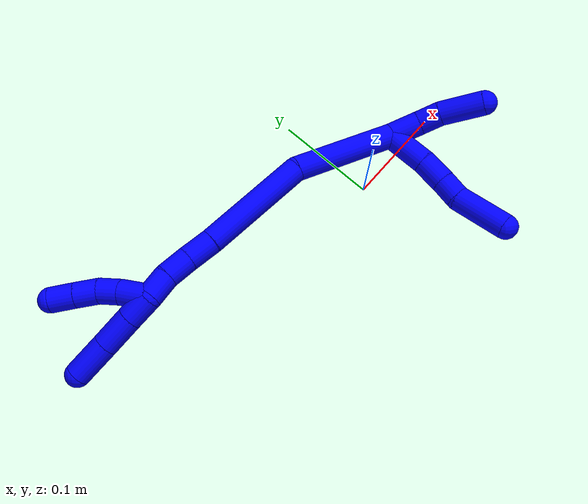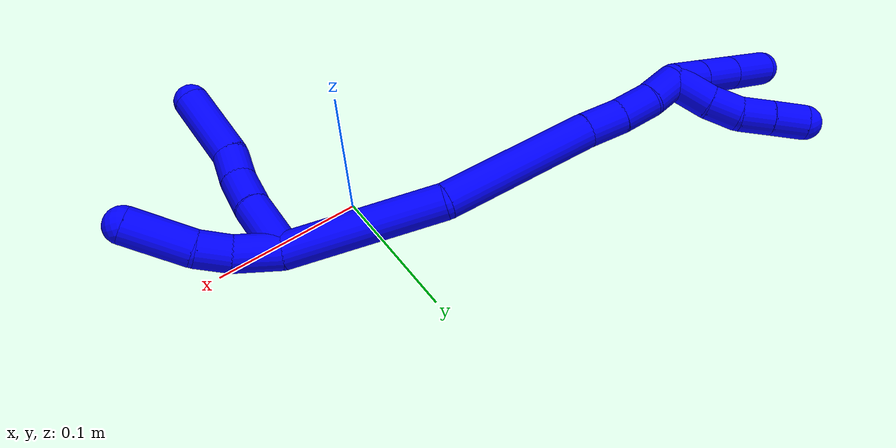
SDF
<sdf version="1.7">
 <world name="default">
  <model name="1">
   <static>0</static>
   <link name="1">
    <collision name="collision-cylinder-e_1_2_8">
     <pose>-0.011809 -0.014699 -0.010914 2.20951 -0.572869 -1.05946</pose>
     <geometry><cylinder><radius>0.0125</radius><length>0.043572</length></cylinder></geometry>
     <surface>
      <friction><ode><mu>1.16</mu><mu2>1.16</mu2><slip1>0</slip1><slip2>0</slip2></ode></friction>
      <contact><ode><kp>1e+06</kp><kd>1</kd><max_vel>0</max_vel><min_depth>0.001</min_depth></ode></contact>
     </surface>
    </collision>
    <visual name="visual-cylinder-e_1_2_8">
     <pose>-0.011809 -0.014699 -0.010914 2.20951 -0.572869 -1.05946</pose>
     <geometry><cylinder><radius>0.0125</radius><length>0.043572</length></cylinder></geometry>
     <material><ambient>0 0 1 1</ambient></material>
    </visual>
    <collision name="collision-cylinder-e_2_8_9">
     <pose>-0.032582 -0.038545 -0.027868 2.15431 -0.685498 -1.17115</pose>
     <geometry><cylinder><radius>0.0125</radius><length>0.02832</length></cylinder></geometry>
     <surface>
      <friction><ode><mu>1.16</mu><mu2>1.16</mu2><slip1>0</slip1><slip2>0</slip2></ode></friction>
      <contact><ode><kp>1e+06</kp><kd>1</kd><max_vel>0</max_vel><min_depth>0.001</min_depth></ode></contact>
     </surface>
    </collision>
    <visual name="visual-cylinder-e_2_8_9">
     <pose>-0.032582 -0.038545 -0.027868 2.15431 -0.685498 -1.17115</pose>
     <geometry><cylinder><radius>0.0125</radius><length>0.02832</length></cylinder></geometry>
     <material><ambient>0 0 1 1</ambient></material>
    </visual>
    <collision name="collision-cylinder-e_3_9_10">
     <pose>-0.048437 -0.056595 -0.036994 1.90456 -0.631457 -0.860624</pose>
     <geometry><cylinder><radius>0.0125</radius><length>0.023348</length></cylinder></geometry>
     <surface>
      <friction><ode><mu>1.16</mu><mu2>1.16</mu2><slip1>0</slip1><slip2>0</slip2></ode></friction>
      <contact><ode><kp>1e+06</kp><kd>1</kd><max_vel>0</max_vel><min_depth>0.001</min_depth></ode></contact>
     </surface>
    </collision>
    <visual name="visual-cylinder-e_3_9_10">
     <pose>-0.048437 -0.056595 -0.036994 1.90456 -0.631457 -0.860624</pose>
     <geometry><cylinder><radius>0.0125</radius><length>0.023348</length></cylinder></geometry>
     <material><ambient>0 0 1 1</ambient></material>
    </visual>
    <collision name="collision-cylinder-e_4_10_6">
     <pose>-0.065901 -0.087338 -0.052767 2.09702 -0.396439 -0.671484</pose>
     <geometry><cylinder><radius>0.0125</radius><length>0.054761</length></cylinder></geometry>
     <surface>
      <friction><ode><mu>1.16</mu><mu2>1.16</mu2><slip1>0</slip1><slip2>0</slip2></ode></friction>
      <contact><ode><kp>1e+06</kp><kd>1</kd><max_vel>0</max_vel><min_depth>0.001</min_depth></ode></contact>
     </surface>
    </collision>
    <visual name="visual-cylinder-e_4_10_6">
     <pose>-0.065901 -0.087338 -0.052767 2.09702 -0.396439 -0.671484</pose>
     <geometry><cylinder><radius>0.0125</radius><length>0.054761</length></cylinder></geometry>
     <material><ambient>0 0 1 1</ambient></material>
    </visual>
    <collision name="collision-cylinder-e_1_2_11">
     <pose>0.006133 -0.004589 -0.013964 2.82409 0.395288 1.79278</pose>
     <geometry><cylinder><radius>0.0125</radius><length>0.031855</length></cylinder></geometry>
     <surface>
      <friction><ode><mu>1.16</mu><mu2>1.16</mu2><slip1>0</slip1><slip2>0</slip2></ode></friction>
      <contact><ode><kp>1e+06</kp><kd>1</kd><max_vel>0</max_vel><min_depth>0.001</min_depth></ode></contact>
     </surface>
    </collision>
    <visual name="visual-cylinder-e_1_2_11">
     <pose>0.006133 -0.004589 -0.013964 2.82409 0.395288 1.79278</pose>
     <geometry><cylinder><radius>0.0125</radius><length>0.031855</length></cylinder></geometry>
     <material><ambient>0 0 1 1</ambient></material>
    </visual>
    <collision name="collision-cylinder-e_2_11_12">
     <pose>0.017305 -0.014822 -0.036734 2.57154 0.448974 1.32398</pose>
     <geometry><cylinder><radius>0.0125</radius><length>0.023218</length></cylinder></geometry>
     <surface>
      <friction><ode><mu>1.16</mu><mu2>1.16</mu2><slip1>0</slip1><slip2>0</slip2></ode></friction>
      <contact><ode><kp>1e+06</kp><kd>1</kd><max_vel>0</max_vel><min_depth>0.001</min_depth></ode></contact>
     </surface>
    </collision>
    <visual name="visual-cylinder-e_2_11_12">
     <pose>0.017305 -0.014822 -0.036734 2.57154 0.448974 1.32398</pose>
     <geometry><cylinder><radius>0.0125</radius><length>0.023218</length></cylinder></geometry>
     <material><ambient>0 0 1 1</ambient></material>
    </visual>
    <collision name="collision-cylinder-e_3_12_5">
     <pose>0.028456 -0.034468 -0.062007 2.43697 0.275578 0.721348</pose>
     <geometry><cylinder><radius>0.0125</radius><length>0.044927</length></cylinder></geometry>
     <surface>
      <friction><ode><mu>1.16</mu><mu2>1.16</mu2><slip1>0</slip1><slip2>0</slip2></ode></friction>
      <contact><ode><kp>1e+06</kp><kd>1</kd><max_vel>0</max_vel><min_depth>0.001</min_depth></ode></contact>
     </surface>
    </collision>
    <visual name="visual-cylinder-e_3_12_5">
     <pose>0.028456 -0.034468 -0.062007 2.43697 0.275578 0.721348</pose>
     <geometry><cylinder><radius>0.0125</radius><length>0.044927</length></cylinder></geometry>
     <material><ambient>0 0 1 1</ambient></material>
    </visual>
    <collision name="collision-cylinder-e_1_2_13">
     <pose>-0.012268 0.000276 0.053133 -0.00519 -0.226919 0.000591</pose>
     <geometry><cylinder><radius>0.0125</radius><length>0.109064</length></cylinder></geometry>
     <surface>
      <friction><ode><mu>1.16</mu><mu2>1.16</mu2><slip1>0</slip1><slip2>0</slip2></ode></friction>
      <contact><ode><kp>1e+06</kp><kd>1</kd><max_vel>0</max_vel><min_depth>0.001</min_depth></ode></contact>
     </surface>
    </collision>
    <visual name="visual-cylinder-e_1_2_13">
     <pose>-0.012268 0.000276 0.053133 -0.00519 -0.226919 0.000591</pose>
     <geometry><cylinder><radius>0.0125</radius><length>0.109064</length></cylinder></geometry>
     <material><ambient>0 0 1 1</ambient></material>
    </visual>
    <collision name="collision-cylinder-e_2_13_14">
     <pose>-0.053819 -0.005195 0.153213 0.121792 -0.554359 -0.03469</pose>
     <geometry><cylinder><radius>0.0125</radius><length>0.111255</length></cylinder></geometry>
     <surface>
      <friction><ode><mu>1.16</mu><mu2>1.16</mu2><slip1>0</slip1><slip2>0</slip2></ode></friction>
      <contact><ode><kp>1e+06</kp><kd>1</kd><max_vel>0</max_vel><min_depth>0.001</min_depth></ode></contact>
     </surface>
    </collision>
    <visual name="visual-cylinder-e_2_13_14">
     <pose>-0.053819 -0.005195 0.153213 0.121792 -0.554359 -0.03469</pose>
     <geometry><cylinder><radius>0.0125</radius><length>0.111255</length></cylinder></geometry>
     <material><ambient>0 0 1 1</ambient></material>
    </visual>
    <collision name="collision-cylinder-e_3_14_15">
     <pose>-0.089964 -0.011562 0.212323 0.050997 -0.513098 -0.013381</pose>
     <geometry><cylinder><radius>0.0125</radius><length>0.02796</length></cylinder></geometry>
     <surface>
      <friction><ode><mu>1.16</mu><mu2>1.16</mu2><slip1>0</slip1><slip2>0</slip2></ode></friction>
      <contact><ode><kp>1e+06</kp><kd>1</kd><max_vel>0</max_vel><min_depth>0.001</min_depth></ode></contact>
     </surface>
    </collision>
    <visual name="visual-cylinder-e_3_14_15">
     <pose>-0.089964 -0.011562 0.212323 0.050997 -0.513098 -0.013381</pose>
     <geometry><cylinder><radius>0.0125</radius><length>0.02796</length></cylinder></geometry>
     <material><ambient>0 0 1 1</ambient></material>
    </visual>
    <collision name="collision-cylinder-e_4_15_16">
     <pose>-0.103197 -0.014058 0.235852 0.163593 -0.505199 -0.042314</pose>
     <geometry><cylinder><radius>0.0125</radius><length>0.026327</length></cylinder></geometry>
     <surface>
      <friction><ode><mu>1.16</mu><mu2>1.16</mu2><slip1>0</slip1><slip2>0</slip2></ode></friction>
      <contact><ode><kp>1e+06</kp><kd>1</kd><max_vel>0</max_vel><min_depth>0.001</min_depth></ode></contact>
     </surface>
    </collision>
    <visual name="visual-cylinder-e_4_15_16">
     <pose>-0.103197 -0.014058 0.235852 0.163593 -0.505199 -0.042314</pose>
     <geometry><cylinder><radius>0.0125</radius><length>0.026327</length></cylinder></geometry>
     <material><ambient>0 0 1 1</ambient></material>
    </visual>
    <collision name="collision-cylinder-e_5_16_1">
     <pose>-0.117287 -0.01916 0.256769 0.325667 -0.653432 -0.111226</pose>
     <geometry><cylinder><radius>0.0125</radius><length>0.025394</length></cylinder></geometry>
     <surface>
      <friction><ode><mu>1.16</mu><mu2>1.16</mu2><slip1>0</slip1><slip2>0</slip2></ode></friction>
      <contact><ode><kp>1e+06</kp><kd>1</kd><max_vel>0</max_vel><min_depth>0.001</min_depth></ode></contact>
     </surface>
    </collision>
    <visual name="visual-cylinder-e_5_16_1">
     <pose>-0.117287 -0.01916 0.256769 0.325667 -0.653432 -0.111226</pose>
     <geometry><cylinder><radius>0.0125</radius><length>0.025394</length></cylinder></geometry>
     <material><ambient>0 0 1 1</ambient></material>
    </visual>
    <collision name="collision-cylinder-e_1_1_17">
     <pose>-0.134569 -0.020011 0.27536 -0.256853 -0.796923 0.108622</pose>
     <geometry><cylinder><radius>0.0125</radius><length>0.026744</length></cylinder></geometry>
     <surface>
      <friction><ode><mu>1.16</mu><mu2>1.16</mu2><slip1>0</slip1><slip2>0</slip2></ode></friction>
      <contact><ode><kp>1e+06</kp><kd>1</kd><max_vel>0</max_vel><min_depth>0.001</min_depth></ode></contact>
     </surface>
    </collision>
    <visual name="visual-cylinder-e_1_1_17">
     <pose>-0.134569 -0.020011 0.27536 -0.256853 -0.796923 0.108622</pose>
     <geometry><cylinder><radius>0.0125</radius><length>0.026744</length></cylinder></geometry>
     <material><ambient>0 0 1 1</ambient></material>
    </visual>
    <collision name="collision-cylinder-e_2_17_18">
     <pose>-0.156495 -0.014634 0.295782 -0.257952 -0.809848 0.111063</pose>
     <geometry><cylinder><radius>0.0125</radius><length>0.034142</length></cylinder></geometry>
     <surface>
      <friction><ode><mu>1.16</mu><mu2>1.16</mu2><slip1>0</slip1><slip2>0</slip2></ode></friction>
      <contact><ode><kp>1e+06</kp><kd>1</kd><max_vel>0</max_vel><min_depth>0.001</min_depth></ode></contact>
     </surface>
    </collision>
    <visual name="visual-cylinder-e_2_17_18">
     <pose>-0.156495 -0.014634 0.295782 -0.257952 -0.809848 0.111063</pose>
     <geometry><cylinder><radius>0.0125</radius><length>0.034142</length></cylinder></geometry>
     <material><ambient>0 0 1 1</ambient></material>
    </visual>
    <collision name="collision-cylinder-e_3_18_4">
     <pose>-0.182864 -0.00818 0.320371 -0.255618 -0.798288 0.108301</pose>
     <geometry><cylinder><radius>0.0125</radius><length>0.039114</length></cylinder></geometry>
     <surface>
      <friction><ode><mu>1.16</mu><mu2>1.16</mu2><slip1>0</slip1><slip2>0</slip2></ode></friction>
      <contact><ode><kp>1e+06</kp><kd>1</kd><max_vel>0</max_vel><min_depth>0.001</min_depth></ode></contact>
     </surface>
    </collision>
    <visual name="visual-cylinder-e_3_18_4">
     <pose>-0.182864 -0.00818 0.320371 -0.255618 -0.798288 0.108301</pose>
     <geometry><cylinder><radius>0.0125</radius><length>0.039114</length></cylinder></geometry>
     <material><ambient>0 0 1 1</ambient></material>
    </visual>
    <collision name="collision-cylinder-e_1_1_19">
     <pose>-0.124561 -0.011668 0.276417 -0.815252 0.030137 -0.013014</pose>
     <geometry><cylinder><radius>0.0125</radius><length>0.029462</length></cylinder></geometry>
     <surface>
      <friction><ode><mu>1.16</mu><mu2>1.16</mu2><slip1>0</slip1><slip2>0</slip2></ode></friction>
      <contact><ode><kp>1e+06</kp><kd>1</kd><max_vel>0</max_vel><min_depth>0.001</min_depth></ode></contact>
     </surface>
    </collision>
    <visual name="visual-cylinder-e_1_1_19">
     <pose>-0.124561 -0.011668 0.276417 -0.815252 0.030137 -0.013014</pose>
     <geometry><cylinder><radius>0.0125</radius><length>0.029462</length></cylinder></geometry>
     <material><ambient>0 0 1 1</ambient></material>
    </visual>
    <collision name="collision-cylinder-e_2_19_20">
     <pose>-0.124427 0.006012 0.2953 -0.66999 -0.027562 0.009595</pose>
     <geometry><cylinder><radius>0.0125</radius><length>0.022429</length></cylinder></geometry>
     <surface>
      <friction><ode><mu>1.16</mu><mu2>1.16</mu2><slip1>0</slip1><slip2>0</slip2></ode></friction>
      <contact><ode><kp>1e+06</kp><kd>1</kd><max_vel>0</max_vel><min_depth>0.001</min_depth></ode></contact>
     </surface>
    </collision>
    <visual name="visual-cylinder-e_2_19_20">
     <pose>-0.124427 0.006012 0.2953 -0.66999 -0.027562 0.009595</pose>
     <geometry><cylinder><radius>0.0125</radius><length>0.022429</length></cylinder></geometry>
     <material><ambient>0 0 1 1</ambient></material>
    </visual>
    <collision name="collision-cylinder-e_3_20_21">
     <pose>-0.126819 0.017769 0.314496 -0.431735 -0.179832 0.039536</pose>
     <geometry><cylinder><radius>0.0125</radius><length>0.023297</length></cylinder></geometry>
     <surface>
      <friction><ode><mu>1.16</mu><mu2>1.16</mu2><slip1>0</slip1><slip2>0</slip2></ode></friction>
      <contact><ode><kp>1e+06</kp><kd>1</kd><max_vel>0</max_vel><min_depth>0.001</min_depth></ode></contact>
     </surface>
    </collision>
    <visual name="visual-cylinder-e_3_20_21">
     <pose>-0.126819 0.017769 0.314496 -0.431735 -0.179832 0.039536</pose>
     <geometry><cylinder><radius>0.0125</radius><length>0.023297</length></cylinder></geometry>
     <material><ambient>0 0 1 1</ambient></material>
    </visual>
    <collision name="collision-cylinder-e_4_21_3">
     <pose>-0.131364 0.027769 0.335895 -0.442277 -0.199694 0.045036</pose>
     <geometry><cylinder><radius>0.0125</radius><length>0.024812</length></cylinder></geometry>
     <surface>
      <friction><ode><mu>1.16</mu><mu2>1.16</mu2><slip1>0</slip1><slip2>0</slip2></ode></friction>
      <contact><ode><kp>1e+06</kp><kd>1</kd><max_vel>0</max_vel><min_depth>0.001</min_depth></ode></contact>
     </surface>
    </collision>
    <visual name="visual-cylinder-e_4_21_3">
     <pose>-0.131364 0.027769 0.335895 -0.442277 -0.199694 0.045036</pose>
     <geometry><cylinder><radius>0.0125</radius><length>0.024812</length></cylinder></geometry>
     <material><ambient>0 0 1 1</ambient></material>
    </visual>
    <collision name="collision-sphere-3">
     <pose>-0.133825 0.032973 0.346884 0 -0 0</pose>
     <geometry><sphere><radius>0.0125</radius></sphere></geometry>
     <surface>
      <friction><ode><mu>1.16</mu><mu2>1.16</mu2><slip1>0</slip1><slip2>0</slip2></ode></friction>
      <contact><ode><kp>1e+06</kp><kd>1</kd><max_vel>0</max_vel><min_depth>0.001</min_depth></ode></contact>
     </surface>
    </collision>
    <visual name="visual-sphere-3">
     <pose>-0.133825 0.032973 0.346884 0 -0 0</pose>
     <geometry><sphere><radius>0.0125</radius></sphere></geometry>
     <material><ambient>0 0 1 1</ambient></material>
    </visual>
    <collision name="collision-sphere-21">
     <pose>-0.128903 0.022564 0.324905 0 -0 0</pose>
     <geometry><sphere><radius>0.0125</radius></sphere></geometry>
     <surface>
      <friction><ode><mu>1.16</mu><mu2>1.16</mu2><slip1>0</slip1><slip2>0</slip2></ode></friction>
      <contact><ode><kp>1e+06</kp><kd>1</kd><max_vel>0</max_vel><min_depth>0.001</min_depth></ode></contact>
     </surface>
    </collision>
    <visual name="visual-sphere-21">
     <pose>-0.128903 0.022564 0.324905 0 -0 0</pose>
     <geometry><sphere><radius>0.0125</radius></sphere></geometry>
     <material><ambient>0 0 1 1</ambient></material>
    </visual>
    <collision name="collision-sphere-20">
     <pose>-0.124736 0.012973 0.304087 0 -0 0</pose>
     <geometry><sphere><radius>0.0125</radius></sphere></geometry>
     <surface>
      <friction><ode><mu>1.16</mu><mu2>1.16</mu2><slip1>0</slip1><slip2>0</slip2></ode></friction>
      <contact><ode><kp>1e+06</kp><kd>1</kd><max_vel>0</max_vel><min_depth>0.001</min_depth></ode></contact>
     </surface>
    </collision>
    <visual name="visual-sphere-20">
     <pose>-0.124736 0.012973 0.304087 0 -0 0</pose>
     <geometry><sphere><radius>0.0125</radius></sphere></geometry>
     <material><ambient>0 0 1 1</ambient></material>
    </visual>
    <collision name="collision-sphere-19">
     <pose>-0.124118 -0.00095 0.286514 0 -0 0</pose>
     <geometry><sphere><radius>0.0125</radius></sphere></geometry>
     <surface>
      <friction><ode><mu>1.16</mu><mu2>1.16</mu2><slip1>0</slip1><slip2>0</slip2></ode></friction>
      <contact><ode><kp>1e+06</kp><kd>1</kd><max_vel>0</max_vel><min_depth>0.001</min_depth></ode></contact>
     </surface>
    </collision>
    <visual name="visual-sphere-19">
     <pose>-0.124118 -0.00095 0.286514 0 -0 0</pose>
     <geometry><sphere><radius>0.0125</radius></sphere></geometry>
     <material><ambient>0 0 1 1</ambient></material>
    </visual>
    <collision name="collision-sphere-11">
     <pose>0.012266 -0.009178 -0.027929 0 -0 0</pose>
     <geometry><sphere><radius>0.0125</radius></sphere></geometry>
     <surface>
      <friction><ode><mu>1.16</mu><mu2>1.16</mu2><slip1>0</slip1><slip2>0</slip2></ode></friction>
      <contact><ode><kp>1e+06</kp><kd>1</kd><max_vel>0</max_vel><min_depth>0.001</min_depth></ode></contact>
     </surface>
    </collision>
    <visual name="visual-sphere-11">
     <pose>0.012266 -0.009178 -0.027929 0 -0 0</pose>
     <geometry><sphere><radius>0.0125</radius></sphere></geometry>
     <material><ambient>0 0 1 1</ambient></material>
    </visual>
    <collision name="collision-sphere-6">
     <pose>-0.076474 -0.109177 -0.065452 0 -0 0</pose>
     <geometry><sphere><radius>0.0125</radius></sphere></geometry>
     <surface>
      <friction><ode><mu>1.16</mu><mu2>1.16</mu2><slip1>0</slip1><slip2>0</slip2></ode></friction>
      <contact><ode><kp>1e+06</kp><kd>1</kd><max_vel>0</max_vel><min_depth>0.001</min_depth></ode></contact>
     </surface>
    </collision>
    <visual name="visual-sphere-6">
     <pose>-0.076474 -0.109177 -0.065452 0 -0 0</pose>
     <geometry><sphere><radius>0.0125</radius></sphere></geometry>
     <material><ambient>0 0 1 1</ambient></material>
    </visual>
    <collision name="collision-sphere-10">
     <pose>-0.055329 -0.065498 -0.040081 0 -0 0</pose>
     <geometry><sphere><radius>0.0125</radius></sphere></geometry>
     <surface>
      <friction><ode><mu>1.16</mu><mu2>1.16</mu2><slip1>0</slip1><slip2>0</slip2></ode></friction>
      <contact><ode><kp>1e+06</kp><kd>1</kd><max_vel>0</max_vel><min_depth>0.001</min_depth></ode></contact>
     </surface>
    </collision>
    <visual name="visual-sphere-10">
     <pose>-0.055329 -0.065498 -0.040081 0 -0 0</pose>
     <geometry><sphere><radius>0.0125</radius></sphere></geometry>
     <material><ambient>0 0 1 1</ambient></material>
    </visual>
    <collision name="collision-sphere-9">
     <pose>-0.041546 -0.047692 -0.033907 0 -0 0</pose>
     <geometry><sphere><radius>0.0125</radius></sphere></geometry>
     <surface>
      <friction><ode><mu>1.16</mu><mu2>1.16</mu2><slip1>0</slip1><slip2>0</slip2></ode></friction>
      <contact><ode><kp>1e+06</kp><kd>1</kd><max_vel>0</max_vel><min_depth>0.001</min_depth></ode></contact>
     </surface>
    </collision>
    <visual name="visual-sphere-9">
     <pose>-0.041546 -0.047692 -0.033907 0 -0 0</pose>
     <geometry><sphere><radius>0.0125</radius></sphere></geometry>
     <material><ambient>0 0 1 1</ambient></material>
    </visual>
    <collision name="collision-sphere-2">
     <geometry><sphere><radius>0.0125</radius></sphere></geometry>
     <surface>
      <friction><ode><mu>1.16</mu><mu2>1.16</mu2><slip1>0</slip1><slip2>0</slip2></ode></friction>
      <contact><ode><kp>1e+06</kp><kd>1</kd><max_vel>0</max_vel><min_depth>0.001</min_depth></ode></contact>
     </surface>
    </collision>
    <visual name="visual-sphere-2">
     <geometry><sphere><radius>0.0125</radius></sphere></geometry>
     <material><ambient>0 0 1 1</ambient></material>
    </visual>
    <collision name="collision-sphere-8">
     <pose>-0.023618 -0.029397 -0.021829 0 -0 0</pose>
     <geometry><sphere><radius>0.0125</radius></sphere></geometry>
     <surface>
      <friction><ode><mu>1.16</mu><mu2>1.16</mu2><slip1>0</slip1><slip2>0</slip2></ode></friction>
      <contact><ode><kp>1e+06</kp><kd>1</kd><max_vel>0</max_vel><min_depth>0.001</min_depth></ode></contact>
     </surface>
    </collision>
    <visual name="visual-sphere-8">
     <pose>-0.023618 -0.029397 -0.021829 0 -0 0</pose>
     <geometry><sphere><radius>0.0125</radius></sphere></geometry>
     <material><ambient>0 0 1 1</ambient></material>
    </visual>
    <collision name="collision-sphere-12">
     <pose>0.022344 -0.020466 -0.045538 0 -0 0</pose>
     <geometry><sphere><radius>0.0125</radius></sphere></geometry>
     <surface>
      <friction><ode><mu>1.16</mu><mu2>1.16</mu2><slip1>0</slip1><slip2>0</slip2></ode></friction>
      <contact><ode><kp>1e+06</kp><kd>1</kd><max_vel>0</max_vel><min_depth>0.001</min_depth></ode></contact>
     </surface>
    </collision>
    <visual name="visual-sphere-12">
     <pose>0.022344 -0.020466 -0.045538 0 -0 0</pose>
     <geometry><sphere><radius>0.0125</radius></sphere></geometry>
     <material><ambient>0 0 1 1</ambient></material>
    </visual>
    <collision name="collision-sphere-5">
     <pose>0.034569 -0.04847 -0.078475 0 -0 0</pose>
     <geometry><sphere><radius>0.0125</radius></sphere></geometry>
     <surface>
      <friction><ode><mu>1.16</mu><mu2>1.16</mu2><slip1>0</slip1><slip2>0</slip2></ode></friction>
      <contact><ode><kp>1e+06</kp><kd>1</kd><max_vel>0</max_vel><min_depth>0.001</min_depth></ode></contact>
     </surface>
    </collision>
    <visual name="visual-sphere-5">
     <pose>0.034569 -0.04847 -0.078475 0 -0 0</pose>
     <geometry><sphere><radius>0.0125</radius></sphere></geometry>
     <material><ambient>0 0 1 1</ambient></material>
    </visual>
    <collision name="collision-sphere-13">
     <pose>-0.024537 0.000552 0.106267 0 -0 0</pose>
     <geometry><sphere><radius>0.0125</radius></sphere></geometry>
     <surface>
      <friction><ode><mu>1.16</mu><mu2>1.16</mu2><slip1>0</slip1><slip2>0</slip2></ode></friction>
      <contact><ode><kp>1e+06</kp><kd>1</kd><max_vel>0</max_vel><min_depth>0.001</min_depth></ode></contact>
     </surface>
    </collision>
    <visual name="visual-sphere-13">
     <pose>-0.024537 0.000552 0.106267 0 -0 0</pose>
     <geometry><sphere><radius>0.0125</radius></sphere></geometry>
     <material><ambient>0 0 1 1</ambient></material>
    </visual>
    <collision name="collision-sphere-14">
     <pose>-0.083101 -0.010941 0.200159 0 -0 0</pose>
     <geometry><sphere><radius>0.0125</radius></sphere></geometry>
     <surface>
      <friction><ode><mu>1.16</mu><mu2>1.16</mu2><slip1>0</slip1><slip2>0</slip2></ode></friction>
      <contact><ode><kp>1e+06</kp><kd>1</kd><max_vel>0</max_vel><min_depth>0.001</min_depth></ode></contact>
     </surface>
    </collision>
    <visual name="visual-sphere-14">
     <pose>-0.083101 -0.010941 0.200159 0 -0 0</pose>
     <geometry><sphere><radius>0.0125</radius></sphere></geometry>
     <material><ambient>0 0 1 1</ambient></material>
    </visual>
    <collision name="collision-sphere-15">
     <pose>-0.096826 -0.012182 0.224487 0 -0 0</pose>
     <geometry><sphere><radius>0.0125</radius></sphere></geometry>
     <surface>
      <friction><ode><mu>1.16</mu><mu2>1.16</mu2><slip1>0</slip1><slip2>0</slip2></ode></friction>
      <contact><ode><kp>1e+06</kp><kd>1</kd><max_vel>0</max_vel><min_depth>0.001</min_depth></ode></contact>
     </surface>
    </collision>
    <visual name="visual-sphere-15">
     <pose>-0.096826 -0.012182 0.224487 0 -0 0</pose>
     <geometry><sphere><radius>0.0125</radius></sphere></geometry>
     <material><ambient>0 0 1 1</ambient></material>
    </visual>
    <collision name="collision-sphere-16">
     <pose>-0.109568 -0.015935 0.247218 0 -0 0</pose>
     <geometry><sphere><radius>0.0125</radius></sphere></geometry>
     <surface>
      <friction><ode><mu>1.16</mu><mu2>1.16</mu2><slip1>0</slip1><slip2>0</slip2></ode></friction>
      <contact><ode><kp>1e+06</kp><kd>1</kd><max_vel>0</max_vel><min_depth>0.001</min_depth></ode></contact>
     </surface>
    </collision>
    <visual name="visual-sphere-16">
     <pose>-0.109568 -0.015935 0.247218 0 -0 0</pose>
     <geometry><sphere><radius>0.0125</radius></sphere></geometry>
     <material><ambient>0 0 1 1</ambient></material>
    </visual>
    <collision name="collision-sphere-1">
     <pose>-0.125005 -0.022385 0.266321 0 -0 0</pose>
     <geometry><sphere><radius>0.0125</radius></sphere></geometry>
     <surface>
      <friction><ode><mu>1.16</mu><mu2>1.16</mu2><slip1>0</slip1><slip2>0</slip2></ode></friction>
      <contact><ode><kp>1e+06</kp><kd>1</kd><max_vel>0</max_vel><min_depth>0.001</min_depth></ode></contact>
     </surface>
    </collision>
    <visual name="visual-sphere-1">
     <pose>-0.125005 -0.022385 0.266321 0 -0 0</pose>
     <geometry><sphere><radius>0.0125</radius></sphere></geometry>
     <material><ambient>0 0 1 1</ambient></material>
    </visual>
    <collision name="collision-sphere-18">
     <pose>-0.168858 -0.011631 0.307165 0 -0 0</pose>
     <geometry><sphere><radius>0.0125</radius></sphere></geometry>
     <surface>
      <friction><ode><mu>1.16</mu><mu2>1.16</mu2><slip1>0</slip1><slip2>0</slip2></ode></friction>
      <contact><ode><kp>1e+06</kp><kd>1</kd><max_vel>0</max_vel><min_depth>0.001</min_depth></ode></contact>
     </surface>
    </collision>
    <visual name="visual-sphere-18">
     <pose>-0.168858 -0.011631 0.307165 0 -0 0</pose>
     <geometry><sphere><radius>0.0125</radius></sphere></geometry>
     <material><ambient>0 0 1 1</ambient></material>
    </visual>
    <collision name="collision-sphere-17">
     <pose>-0.144133 -0.017637 0.284399 0 -0 0</pose>
     <geometry><sphere><radius>0.0125</radius></sphere></geometry>
     <surface>
      <friction><ode><mu>1.16</mu><mu2>1.16</mu2><slip1>0</slip1><slip2>0</slip2></ode></friction>
      <contact><ode><kp>1e+06</kp><kd>1</kd><max_vel>0</max_vel><min_depth>0.001</min_depth></ode></contact>
     </surface>
    </collision>
    <visual name="visual-sphere-17">
     <pose>-0.144133 -0.017637 0.284399 0 -0 0</pose>
     <geometry><sphere><radius>0.0125</radius></sphere></geometry>
     <material><ambient>0 0 1 1</ambient></material>
    </visual>
    <collision name="collision-sphere-4">
     <pose>-0.19687 -0.004728 0.333577 0 -0 0</pose>
     <geometry><sphere><radius>0.0125</radius></sphere></geometry>
     <surface>
      <friction><ode><mu>1.16</mu><mu2>1.16</mu2><slip1>0</slip1><slip2>0</slip2></ode></friction>
      <contact><ode><kp>1e+06</kp><kd>1</kd><max_vel>0</max_vel><min_depth>0.001</min_depth></ode></contact>
     </surface>
    </collision>
    <visual name="visual-sphere-4">
     <pose>-0.19687 -0.004728 0.333577 0 -0 0</pose>
     <geometry><sphere><radius>0.0125</radius></sphere></geometry>
     <material><ambient>0 0 1 1</ambient></material>
    </visual>
    <inertial>
     <pose>-0.064809 -0.016085 0.12377 0 -0 0</pose>
     <mass>0.75</mass>
     <inertia>
      <ixx>0.00023</ixx>
      <ixy>0</ixy>
      <ixz>0</ixz>
      <iyy>0.000237</iyy>
      <iyz>0</iyz>
      <izz>0.000168</izz>
     </inertia>
    </inertial>
   </link>
   <pose>0.059703 0.014603 0.011558 -1.16422 -0.604222 0.735878</pose>
  </model>
 </world>
</sdf>
